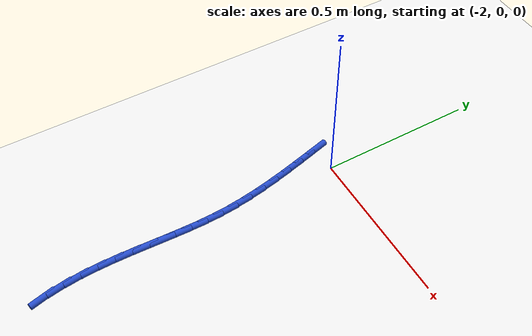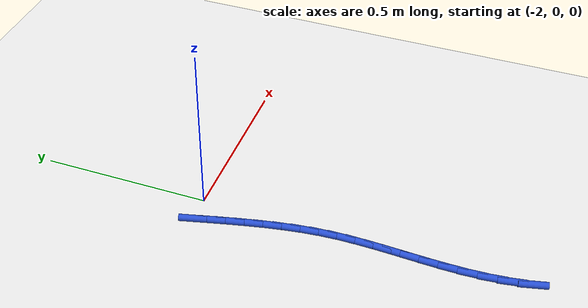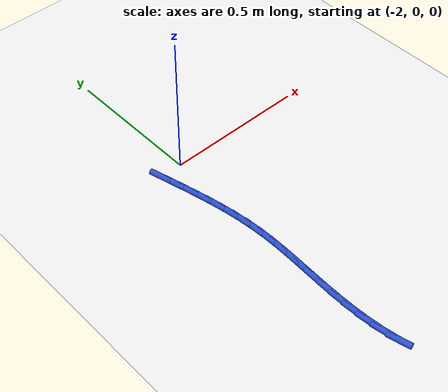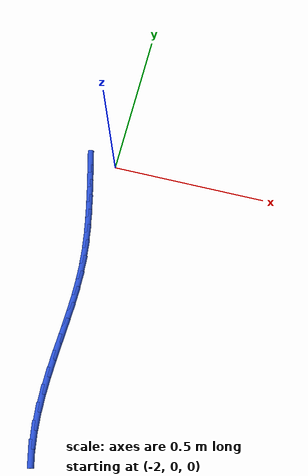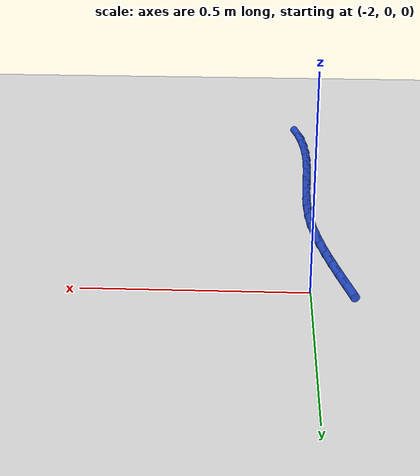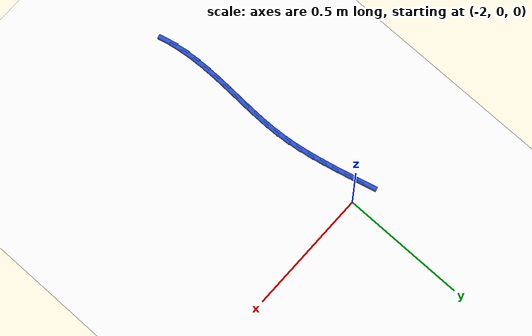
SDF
<sdf version="1.6">
 <world name="default">
  <model name="ground_plane">
   <static>1</static>
   <link name="link">
    <collision name="collision">
     <geometry><plane><normal>0 0 1</normal><size>100 100</size></plane></geometry>
     <surface><friction><ode><mu>100</mu><mu2>50</mu2></ode></friction></surface>
    </collision>
    <visual name="visual">
     <cast_shadows>0</cast_shadows>
     <geometry><plane><normal>0 0 1</normal><size>100 100</size></plane></geometry>
     <material>
      <script><uri>file://media/materials/scripts/gazebo.material</uri><name>Gazebo/WhiteGlow</name></script>
     </material>
    </visual>
   </link>
  </model>
  <model name="line">
   <link name="link_76">
    <pose>-2.084447047907826 -0.0032301029572587847 0.01 0 1.57 -1.31846167300155</pose>
    <collision name="collision">
     <geometry><cylinder><radius>0.01</radius><length>0.08</length></cylinder></geometry>
    </collision>
    <visual name="visual">
     <material>
      <script><name>Gazebo/Blue</name><uri>file://media/materials/scripts/gazebo.material</uri></script>
     </material>
     <geometry><cylinder><radius>0.01</radius><length>0.08</length></cylinder></geometry>
    </visual>
   </link>
   <link name="link_77">
    <pose>-2.071254049460073 -0.054399416301895265 0.01 0 1.57 -1.3245048321381647</pose>
    <collision name="collision">
     <geometry><cylinder><radius>0.01</radius><length>0.08</length></cylinder></geometry>
    </collision>
    <visual name="visual">
     <material>
      <script><name>Gazebo/Blue</name><uri>file://media/materials/scripts/gazebo.material</uri></script>
     </material>
     <geometry><cylinder><radius>0.01</radius><length>0.08</length></cylinder></geometry>
    </visual>
   </link>
   <link name="link_78">
    <pose>-2.0583817722241053 -0.10560274059589497 0.01 0 1.57 -1.3377865852273478</pose>
    <collision name="collision">
     <geometry><cylinder><radius>0.01</radius><length>0.08</length></cylinder></geometry>
    </collision>
    <visual name="visual">
     <material>
      <script><name>Gazebo/Blue</name><uri>file://media/materials/scripts/gazebo.material</uri></script>
     </material>
     <geometry><cylinder><radius>0.01</radius><length>0.08</length></cylinder></geometry>
    </visual>
   </link>
   <link name="link_79">
    <pose>-2.0462203997426673 -0.15684728066698067 0.01 0 1.57 -1.3584183952032456</pose>
    <collision name="collision">
     <geometry><cylinder><radius>0.01</radius><length>0.08</length></cylinder></geometry>
    </collision>
    <visual name="visual">
     <material>
      <script><name>Gazebo/Blue</name><uri>file://media/materials/scripts/gazebo.material</uri></script>
     </material>
     <geometry><cylinder><radius>0.01</radius><length>0.08</length></cylinder></geometry>
    </visual>
   </link>
   <link name="link_80">
    <pose>-2.0351601155585035 -0.20814024134287168 0.01 0 1.57 -1.3865557244322242</pose>
    <collision name="collision">
     <geometry><cylinder><radius>0.01</radius><length>0.08</length></cylinder></geometry>
    </collision>
    <visual name="visual">
     <material>
      <script><name>Gazebo/Blue</name><uri>file://media/materials/scripts/gazebo.material</uri></script>
     </material>
     <geometry><cylinder><radius>0.01</radius><length>0.08</length></cylinder></geometry>
    </visual>
   </link>
   <link name="link_81">
    <pose>-2.0255911032143588 -0.25948882745129087 0.01 0 1.57 -1.4223659187849609</pose>
    <collision name="collision">
     <geometry><cylinder><radius>0.01</radius><length>0.08</length></cylinder></geometry>
    </collision>
    <visual name="visual">
     <material>
      <script><name>Gazebo/Blue</name><uri>file://media/materials/scripts/gazebo.material</uri></script>
     </material>
     <geometry><cylinder><radius>0.01</radius><length>0.08</length></cylinder></geometry>
    </visual>
   </link>
   <link name="link_82">
    <pose>-2.017903546252977 -0.3109002438199584 0.01 0 1.57 -1.4659805220283877</pose>
    <collision name="collision">
     <geometry><cylinder><radius>0.01</radius><length>0.08</length></cylinder></geometry>
    </collision>
    <visual name="visual">
     <material>
      <script><name>Gazebo/Blue</name><uri>file://media/materials/scripts/gazebo.material</uri></script>
     </material>
     <geometry><cylinder><radius>0.01</radius><length>0.08</length></cylinder></geometry>
    </visual>
   </link>
   <link name="link_83">
    <pose>-2.012487628217104 -0.36238169527659453 0.01 0 1.57 -1.5161075767296883</pose>
    <collision name="collision">
     <geometry><cylinder><radius>0.01</radius><length>0.08</length></cylinder></geometry>
    </collision>
    <visual name="visual">
     <material>
      <script><name>Gazebo/Blue</name><uri>file://media/materials/scripts/gazebo.material</uri></script>
     </material>
     <geometry><cylinder><radius>0.01</radius><length>0.08</length></cylinder></geometry>
    </visual>
   </link>
   <link name="link_84">
    <pose>-2.00966514301978 -0.4139402104610438 0.01 0 1.57 -1.5603521216147471</pose>
    <collision name="collision">
     <geometry><cylinder><radius>0.01</radius><length>0.08</length></cylinder></geometry>
    </collision>
    <visual name="visual">
     <material>
      <script><name>Gazebo/Blue</name><uri>file://media/materials/scripts/gazebo.material</uri></script>
     </material>
     <geometry><cylinder><radius>0.01</radius><length>0.08</length></cylinder></geometry>
    </visual>
   </link>
   <link name="link_85">
    <pose>-2.0091257744266544 -0.4655811895477483 0.01 0 1.57 1.5496958889609997</pose>
    <collision name="collision">
     <geometry><cylinder><radius>0.01</radius><length>0.08</length></cylinder></geometry>
    </collision>
    <visual name="visual">
     <material>
      <script><name>Gazebo/Blue</name><uri>file://media/materials/scripts/gazebo.material</uri></script>
     </material>
     <geometry><cylinder><radius>0.01</radius><length>0.08</length></cylinder></geometry>
    </visual>
   </link>
   <link name="link_86">
    <pose>-2.010217419101832 -0.5173091521866582 0.01 0 1.57 1.530925023113176</pose>
    <collision name="collision">
     <geometry><cylinder><radius>0.01</radius><length>0.08</length></cylinder></geometry>
    </collision>
    <visual name="visual">
     <material>
      <script><name>Gazebo/Blue</name><uri>file://media/materials/scripts/gazebo.material</uri></script>
     </material>
     <geometry><cylinder><radius>0.01</radius><length>0.08</length></cylinder></geometry>
    </visual>
   </link>
   <link name="link_87">
    <pose>-2.0122846239592644 -0.5691286093979712 0.01 0 1.57 1.5248440953620594</pose>
    <collision name="collision">
     <geometry><cylinder><radius>0.01</radius><length>0.08</length></cylinder></geometry>
    </collision>
    <visual name="visual">
     <material>
      <script><name>Gazebo/Blue</name><uri>file://media/materials/scripts/gazebo.material</uri></script>
     </material>
     <geometry><cylinder><radius>0.01</radius><length>0.08</length></cylinder></geometry>
    </visual>
   </link>
   <link name="link_88">
    <pose>-2.0146719359129044 -0.6210440722018851 0.01 0 1.57 1.5313680097054232</pose>
    <collision name="collision">
     <geometry><cylinder><radius>0.01</radius><length>0.08</length></cylinder></geometry>
    </collision>
    <visual name="visual">
     <material>
      <script><name>Gazebo/Blue</name><uri>file://media/materials/scripts/gazebo.material</uri></script>
     </material>
     <geometry><cylinder><radius>0.01</radius><length>0.08</length></cylinder></geometry>
    </visual>
   </link>
   <link name="link_89">
    <pose>-2.0167239018767043 -0.6730600516186008 0.01 0 1.57 1.5504394618624726</pose>
    <collision name="collision">
     <geometry><cylinder><radius>0.01</radius><length>0.08</length></cylinder></geometry>
    </collision>
    <visual name="visual">
     <material>
      <script><name>Gazebo/Blue</name><uri>file://media/materials/scripts/gazebo.material</uri></script>
     </material>
     <geometry><cylinder><radius>0.01</radius><length>0.08</length></cylinder></geometry>
    </visual>
   </link>
   <link name="link_90">
    <pose>-2.017785068764616 -0.7251810586683158 0.01 0 1.57 -1.5595948201860999</pose>
    <collision name="collision">
     <geometry><cylinder><radius>0.01</radius><length>0.08</length></cylinder></geometry>
    </collision>
    <visual name="visual">
     <material>
      <script><name>Gazebo/Blue</name><uri>file://media/materials/scripts/gazebo.material</uri></script>
     </material>
     <geometry><cylinder><radius>0.01</radius><length>0.08</length></cylinder></geometry>
    </visual>
   </link>
   <link name="link_91">
    <pose>-2.0171999834905914 -0.777411604371228 0.01 0 1.57 -1.5161636953227522</pose>
    <collision name="collision">
     <geometry><cylinder><radius>0.01</radius><length>0.08</length></cylinder></geometry>
    </collision>
    <visual name="visual">
     <material>
      <script><name>Gazebo/Blue</name><uri>file://media/materials/scripts/gazebo.material</uri></script>
     </material>
     <geometry><cylinder><radius>0.01</radius><length>0.08</length></cylinder></geometry>
    </visual>
   </link>
   <link name="link_92">
    <pose>-2.0143394430753156 -0.8297190586685662 0.01 0 1.57 -1.46348791189063</pose>
    <collision name="collision">
     <geometry><cylinder><radius>0.01</radius><length>0.08</length></cylinder></geometry>
    </collision>
    <visual name="visual">
     <material>
      <script><name>Gazebo/Blue</name><uri>file://media/materials/scripts/gazebo.material</uri></script>
     </material>
     <geometry><cylinder><radius>0.01</radius><length>0.08</length></cylinder></geometry>
    </visual>
   </link>
   <link name="link_93">
    <pose>-2.008722612238743 -0.8818608671575701 0.01 0 1.57 -1.4020356445220088</pose>
    <collision name="collision">
     <geometry><cylinder><radius>0.01</radius><length>0.08</length></cylinder></geometry>
    </collision>
    <visual name="visual">
     <material>
      <script><name>Gazebo/Blue</name><uri>file://media/materials/scripts/gazebo.material</uri></script>
     </material>
     <geometry><cylinder><radius>0.01</radius><length>0.08</length></cylinder></geometry>
    </visual>
   </link>
   <link name="link_94">
    <pose>-1.9999207281892109 -0.9335207984625439 0.01 0 1.57 -1.3313728469489872</pose>
    <collision name="collision">
     <geometry><cylinder><radius>0.01</radius><length>0.08</length></cylinder></geometry>
    </collision>
    <visual name="visual">
     <material>
      <script><name>Gazebo/Blue</name><uri>file://media/materials/scripts/gazebo.material</uri></script>
     </material>
     <geometry><cylinder><radius>0.01</radius><length>0.08</length></cylinder></geometry>
    </visual>
   </link>
  </model>
 </world>
</sdf>
